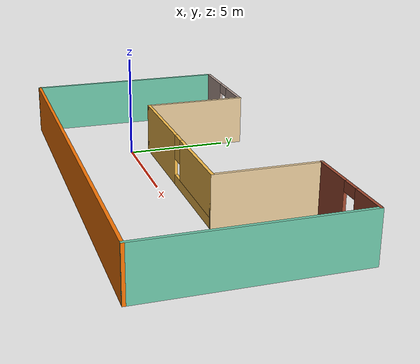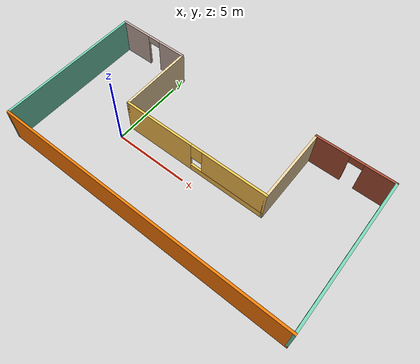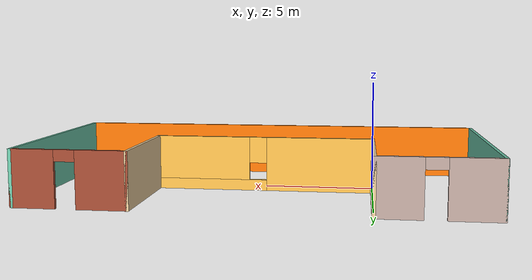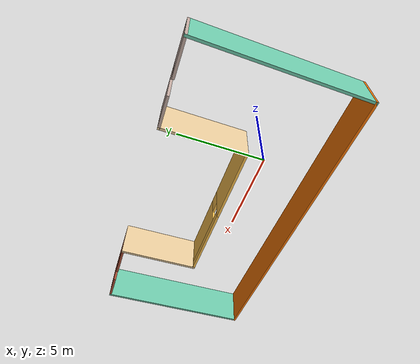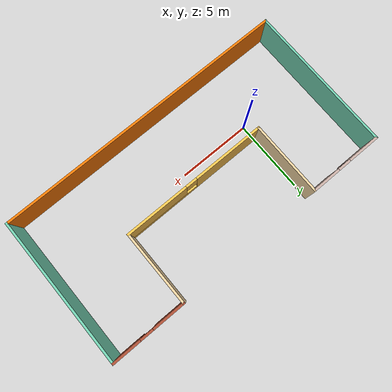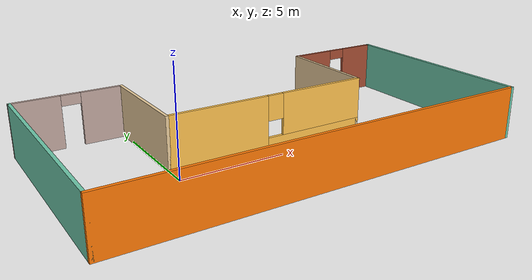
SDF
<?xml version='1.0'?>
<sdf version='1.6'>
  <model name='building'>
    <pose frame=''>5 1 0 0 -0 0</pose>
    <link name='Wall_0'>
      <collision name='Wall_0_Collision'>
        <geometry>
          <box>
            <size>10.15 0.15 2.5</size>
          </box>
        </geometry>
        <pose frame=''>0 0 1.25 0 -0 0</pose>
      </collision>
      <visual name='Wall_0_Visual'>
        <pose frame=''>0 0 1.25 0 -0 0</pose>
        <geometry>
          <box>
            <size>10.15 0.15 2.5</size>
          </box>
        </geometry>
        <material>
          <script>
            <uri>file://media/materials/scripts/gazebo.material</uri>
            <name>Gazebo/Grey</name>
          </script>
          <ambient>0.435294 0.796078 0.67451 1</ambient>
        </material>
        <meta>
          <layer>0</layer>
        </meta>
      </visual>
      <pose frame=''>-10 0 0 0 0 -1.5708</pose>
    </link>
    <link name='Wall_10'>
      <pose frame=''>7.5 5 0 0 -0 0</pose>
      <visual name='Wall_10_Visual_0'>
        <pose frame=''>-1.44283 0 1.25 0 -0 0</pose>
        <geometry>
          <box>
            <size>2.26434 0.15 2.5</size>
          </box>
        </geometry>
        <material>
          <script>
            <uri>file://media/materials/scripts/gazebo.material</uri>
            <name>Gazebo/Bricks</name>
          </script>
          <ambient>0.760784 0.662745 0.627451 1</ambient>
        </material>
        <meta>
          <layer>0</layer>
        </meta>
      </visual>
      <collision name='Wall_10_Collision_0'>
        <geometry>
          <box>
            <size>2.26434 0.15 2.5</size>
          </box>
        </geometry>
        <pose frame=''>-1.44283 0 1.25 0 -0 0</pose>
      </collision>
      <visual name='Wall_10_Visual_1'>
        <pose frame=''>1.58217 0 1.25 0 -0 0</pose>
        <geometry>
          <box>
            <size>1.98566 0.15 2.5</size>
          </box>
        </geometry>
        <material>
          <script>
            <uri>file://media/materials/scripts/gazebo.material</uri>
            <name>Gazebo/Bricks</name>
          </script>
          <ambient>0.760784 0.662745 0.627451 1</ambient>
        </material>
        <meta>
          <layer>0</layer>
        </meta>
      </visual>
      <collision name='Wall_10_Collision_1'>
        <geometry>
          <box>
            <size>1.98566 0.15 2.5</size>
          </box>
        </geometry>
        <pose frame=''>1.58217 0 1.25 0 -0 0</pose>
      </collision>
      <visual name='Wall_10_Visual_2'>
        <pose frame=''>0.139344 0 2.25 0 -0 0</pose>
        <geometry>
          <box>
            <size>0.9 0.15 0.5</size>
          </box>
        </geometry>
        <material>
          <script>
            <uri>file://media/materials/scripts/gazebo.material</uri>
            <name>Gazebo/Bricks</name>
          </script>
          <ambient>0.760784 0.662745 0.627451 1</ambient>
        </material>
        <meta>
          <layer>0</layer>
        </meta>
      </visual>
      <collision name='Wall_10_Collision_2'>
        <geometry>
          <box>
            <size>0.9 0.15 0.5</size>
          </box>
        </geometry>
        <pose frame=''>0.139344 0 2.25 0 -0 0</pose>
      </collision>
    </link>
    <link name='Wall_11'>
      <collision name='Wall_11_Collision'>
        <geometry>
          <box>
            <size>10.15 0.15 2.5</size>
          </box>
        </geometry>
        <pose frame=''>0 0 1.25 0 -0 0</pose>
      </collision>
      <visual name='Wall_11_Visual'>
        <pose frame=''>0 0 1.25 0 -0 0</pose>
        <geometry>
          <box>
            <size>10.15 0.15 2.5</size>
          </box>
        </geometry>
        <material>
          <script>
            <uri>file://media/materials/scripts/gazebo.material</uri>
            <name>Gazebo/Grey</name>
          </script>
          <ambient>0.435294 0.796078 0.67451 1</ambient>
        </material>
        <meta>
          <layer>0</layer>
        </meta>
      </visual>
      <pose frame=''>10 0 0 0 0 -1.5708</pose>
    </link>
    <link name='Wall_2'>
      <collision name='Wall_2_Collision'>
        <geometry>
          <box>
            <size>20.1505 0.15 2.5</size>
          </box>
        </geometry>
        <pose frame=''>0 0 1.25 0 -0 0</pose>
      </collision>
      <visual name='Wall_2_Visual'>
        <pose frame=''>0 0 1.25 0 -0 0</pose>
        <geometry>
          <box>
            <size>20.1505 0.15 2.5</size>
          </box>
        </geometry>
        <material>
          <script>
            <uri>file://media/materials/scripts/gazebo.material</uri>
            <name>Gazebo/Grey</name>
          </script>
          <ambient>0.996078 0.47451 0.0196078 1</ambient>
        </material>
        <meta>
          <layer>0</layer>
        </meta>
      </visual>
      <pose frame=''>0 -5 0 0 -0 0</pose>
    </link>
    <link name='Wall_4'>
      <pose frame=''>-7.5 5 0 0 -0 0</pose>
      <visual name='Wall_4_Visual_0'>
        <pose frame=''>-1.45694 0 1.25 0 -0 0</pose>
        <geometry>
          <box>
            <size>2.23613 0.15 2.5</size>
          </box>
        </geometry>
        <material>
          <script>
            <uri>file://media/materials/scripts/gazebo.material</uri>
            <name>Gazebo/Grey</name>
          </script>
          <ambient>0.760784 0.662745 0.627451 1</ambient>
        </material>
        <meta>
          <layer>0</layer>
        </meta>
      </visual>
      <collision name='Wall_4_Collision_0'>
        <geometry>
          <box>
            <size>2.23613 0.15 2.5</size>
          </box>
        </geometry>
        <pose frame=''>-1.45694 0 1.25 0 -0 0</pose>
      </collision>
      <visual name='Wall_4_Visual_1'>
        <pose frame=''>1.56806 0 1.25 0 -0 0</pose>
        <geometry>
          <box>
            <size>2.01387 0.15 2.5</size>
          </box>
        </geometry>
        <material>
          <script>
            <uri>file://media/materials/scripts/gazebo.material</uri>
            <name>Gazebo/Grey</name>
          </script>
          <ambient>0.760784 0.662745 0.627451 1</ambient>
        </material>
        <meta>
          <layer>0</layer>
        </meta>
      </visual>
      <collision name='Wall_4_Collision_1'>
        <geometry>
          <box>
            <size>2.01387 0.15 2.5</size>
          </box>
        </geometry>
        <pose frame=''>1.56806 0 1.25 0 -0 0</pose>
      </collision>
      <visual name='Wall_4_Visual_2'>
        <pose frame=''>0.111127 0 2.25 0 -0 0</pose>
        <geometry>
          <box>
            <size>0.9 0.15 0.5</size>
          </box>
        </geometry>
        <material>
          <script>
            <uri>file://media/materials/scripts/gazebo.material</uri>
            <name>Gazebo/Grey</name>
          </script>
          <ambient>0.760784 0.662745 0.627451 1</ambient>
        </material>
        <meta>
          <layer>0</layer>
        </meta>
      </visual>
      <collision name='Wall_4_Collision_2'>
        <geometry>
          <box>
            <size>0.9 0.15 0.5</size>
          </box>
        </geometry>
        <pose frame=''>0.111127 0 2.25 0 -0 0</pose>
      </collision>
    </link>
    <link name='Wall_6'>
      <collision name='Wall_6_Collision'>
        <geometry>
          <box>
            <size>5.15 0.15 2.5</size>
          </box>
        </geometry>
        <pose frame=''>0 0 1.25 0 -0 0</pose>
      </collision>
      <visual name='Wall_6_Visual'>
        <pose frame=''>0 0 1.25 0 -0 0</pose>
        <geometry>
          <box>
            <size>5.15 0.15 2.5</size>
          </box>
        </geometry>
        <material>
          <script>
            <uri>file://media/materials/scripts/gazebo.material</uri>
            <name>Gazebo/Grey</name>
          </script>
          <ambient>0.921569 0.807843 0.615686 1</ambient>
        </material>
        <meta>
          <layer>0</layer>
        </meta>
      </visual>
      <pose frame=''>-5 2.5 0 0 0 -1.5708</pose>
    </link>
    <link name='Wall_8'>
      <pose frame=''>0 0 0 0 -0 0</pose>
      <visual name='Wall_8_Visual_0'>
        <pose frame=''>-2.60332 0 1.25 0 -0 0</pose>
        <geometry>
          <box>
            <size>4.94336 0.15 2.5</size>
          </box>
        </geometry>
        <material>
          <script>
            <uri>file://media/materials/scripts/gazebo.material</uri>
            <name>Gazebo/Grey</name>
          </script>
          <ambient>1 0.764706 0.305882 1</ambient>
        </material>
        <meta>
          <layer>0</layer>
        </meta>
      </visual>
      <collision name='Wall_8_Collision_0'>
        <geometry>
          <box>
            <size>4.94336 0.15 2.5</size>
          </box>
        </geometry>
        <pose frame=''>-2.60332 0 1.25 0 -0 0</pose>
      </collision>
      <visual name='Wall_8_Visual_1'>
        <pose frame=''>2.47168 0 0.25 0 -0 0</pose>
        <geometry>
          <box>
            <size>5.20664 0.15 0.5</size>
          </box>
        </geometry>
        <material>
          <script>
            <uri>file://media/materials/scripts/gazebo.material</uri>
            <name>Gazebo/Grey</name>
          </script>
          <ambient>1 0.764706 0.305882 1</ambient>
        </material>
        <meta>
          <layer>0</layer>
        </meta>
      </visual>
      <collision name='Wall_8_Collision_1'>
        <geometry>
          <box>
            <size>5.20664 0.15 0.5</size>
          </box>
        </geometry>
        <pose frame=''>2.47168 0 0.25 0 -0 0</pose>
      </collision>
      <visual name='Wall_8_Visual_2'>
        <pose frame=''>2.87168 0 1.5 0 -0 0</pose>
        <geometry>
          <box>
            <size>4.40664 0.15 2</size>
          </box>
        </geometry>
        <material>
          <script>
            <uri>file://media/materials/scripts/gazebo.material</uri>
            <name>Gazebo/Grey</name>
          </script>
          <ambient>1 0.764706 0.305882 1</ambient>
        </material>
        <meta>
          <layer>0</layer>
        </meta>
      </visual>
      <collision name='Wall_8_Collision_2'>
        <geometry>
          <box>
            <size>4.40664 0.15 2</size>
          </box>
        </geometry>
        <pose frame=''>2.87168 0 1.5 0 -0 0</pose>
      </collision>
      <visual name='Wall_8_Visual_3'>
        <pose frame=''>0.268362 0 1.9 0 -0 0</pose>
        <geometry>
          <box>
            <size>0.8 0.15 1.2</size>
          </box>
        </geometry>
        <material>
          <script>
            <uri>file://media/materials/scripts/gazebo.material</uri>
            <name>Gazebo/Grey</name>
          </script>
          <ambient>1 0.764706 0.305882 1</ambient>
        </material>
        <meta>
          <layer>0</layer>
        </meta>
      </visual>
      <collision name='Wall_8_Collision_3'>
        <geometry>
          <box>
            <size>0.8 0.15 1.2</size>
          </box>
        </geometry>
        <pose frame=''>0.268362 0 1.9 0 -0 0</pose>
      </collision>
    </link>
    <link name='Wall_9'>
      <collision name='Wall_9_Collision'>
        <geometry>
          <box>
            <size>5.15 0.15 2.5</size>
          </box>
        </geometry>
        <pose frame=''>0 0 1.25 0 -0 0</pose>
      </collision>
      <visual name='Wall_9_Visual'>
        <pose frame=''>0 0 1.25 0 -0 0</pose>
        <geometry>
          <box>
            <size>5.15 0.15 2.5</size>
          </box>
        </geometry>
        <material>
          <script>
            <uri>file://media/materials/scripts/gazebo.material</uri>
            <name>Gazebo/Grey</name>
          </script>
          <ambient>0.921569 0.807843 0.615686 1</ambient>
        </material>
        <meta>
          <layer>0</layer>
        </meta>
      </visual>
      <pose frame=''>5 2.5 0 0 -0 1.5708</pose>
    </link>
    <static>1</static>
  </model>
</sdf>
